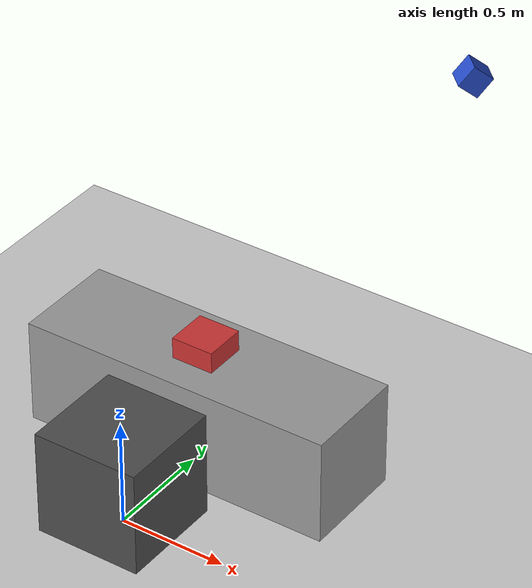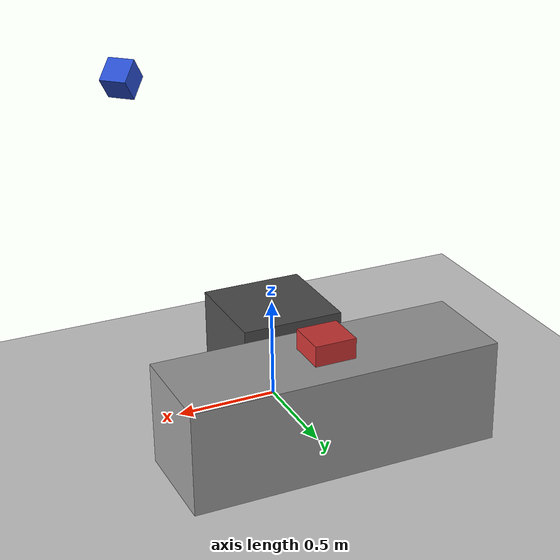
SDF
<?xml version="1.0" ?>
<sdf version="1.6">
  <world name="default">
    <!-- A global light source -->
    <include>
      <uri>model://sun</uri>
    </include>
    <!-- A ground plane -->
    <include>
      <uri>model://ground_plane</uri>
    </include>

    <!-- A simple model for the patient bed -->
    <model name="patient_bed">
      <static>true</static>
      <pose>0 0.6 0.25 0 -0 0</pose>
      <link name="link">
        <visual name="visual">
          <geometry>
            <box><size>1.5 0.5 0.5</size></box>
          </geometry>
          <material>
            <script><uri>file://media/materials/scripts/gazebo.material</uri><name>Gazebo/Grey</name></script>
          </material>
        </visual>
        <collision name="collision">
          <geometry><box><size>1.5 0.5 0.5</size></box></geometry>
        </collision>
      </link>
    </model>

    <!-- A table for the iiwa robot -->
    <model name="robot_table">
      <static>true</static>
      <pose>0 0 0.25 0 -0 0</pose>
      <link name="link">
        <visual name="visual">
          <geometry>
            <box><size>0.5 0.5 0.5</size></box>
          </geometry>
          <material>
            <script><uri>file://media/materials/scripts/gazebo.material</uri><name>Gazebo/DarkGrey</name></script>
          </material>
        </visual>
        <collision name="collision">
          <geometry><box><size>0.5 0.5 0.5</size></box></geometry>
        </collision>
      </link>
    </model>

    <!-- A simple model for the liver phantom -->
    <!-- Deformable by reducing contact stiffness -->
    <model name="liver_phantom">
      <static>false</static>
      <pose>0 0.6 0.55 0 -0 0</pose>
      <link name="link">
        <inertial>
          <mass>2.0</mass>
          <inertia>
            <ixx>0.0067</ixx>
            <ixy>0</ixy>
            <ixz>0</ixz>
            <iyy>0.0067</iyy>
            <iyz>0</iyz>
            <izz>0.0067</izz>
          </inertia>
        </inertial>
        <visual name="visual">
          <geometry>
            <box><size>0.2 0.2 0.1</size></box>
          </geometry>
          <material>
            <ambient>0.8 0.2 0.2 1</ambient>
            <diffuse>0.8 0.2 0.2 1</diffuse>
            <specular>0.1 0.1 0.1 1</specular>
          </material>
        </visual>
        <collision name="collision">
          <geometry><box><size>0.2 0.2 0.1</size></box></geometry>
          <surface>
            <contact>
              <ode>
                <!-- Soft tissue properties for liver-like compliance -->
                <!-- Lower kp = softer, more deformable (was 1000000, now 50000) -->
                <kp>50000.0</kp>
                <!-- Higher kd = more damping, less bouncy (was 1.0, now 100.0) -->
                <kd>100.0</kd>
                <!-- Allow small penetration for compliance -->
                <max_vel>0.01</max_vel>
                <min_depth>0.002</min_depth>
              </ode>
            </contact>
            <!-- Surface friction properties -->
            <friction>
              <ode>
                <mu>0.8</mu>
                <mu2>0.8</mu2>
              </ode>
            </friction>
            <!-- Soft body approximation using compliance -->
            <bounce>
              <restitution_coefficient>0.1</restitution_coefficient>
              <threshold>0.01</threshold>
            </bounce>
          </surface>
        </collision>
      </link>
      <joint name="world_fixed_joint" type="fixed">
        <parent>world</parent>
        <child>link</child>
      </joint>
    </model>

    <!-- Static World Camera -->
    <!-- IMPORTANT: Camera pose must match config/camera_config.yaml -->
    <!-- Position: x=0.6, y=0.6, z=1.5 | Orientation (radians): roll, pitch, yaw= -->
    <model name="world_camera">
      <static>true</static>
      <!-- Gazebo SDF uses radians for roll, pitch, yaw -->
      <pose>1 1 2 0 0.9 -2.35619449</pose>
      <link name="link">
        <visual name="visual">
          <geometry>
            <box>
              <size>0.1 0.1 0.1</size>
            </box>
          </geometry>
          <material>
            <script>
              <uri>file://media/materials/scripts/gazebo.material</uri>
              <name>Gazebo/Blue</name>
            </script>
          </material>
        </visual>
        <sensor name="camera" type="depth">
          <always_on>1</always_on>
          <update_rate>30</update_rate>
          <camera>
            <horizontal_fov>1.047</horizontal_fov>  <!-- 60 degrees -->
            <image>
              <width>640</width>
              <height>480</height>
              <format>R8G8B8</format>
            </image>
            <clip>
              <near>0.1</near>
              <far>10</far>
            </clip>
          </camera>
          <plugin name="camera_controller" filename="libgazebo_ros_openni_kinect.so">
            <baseline>0.1</baseline>
            <alwaysOn>true</alwaysOn>
            <updateRate>30.0</updateRate>
            <cameraName>world_camera</cameraName>
            <imageTopicName>rgb/image_raw</imageTopicName>
            <cameraInfoTopicName>rgb/camera_info</cameraInfoTopicName>
            <depthImageTopicName>depth/image_raw</depthImageTopicName>
            <depthImageCameraInfoTopicName>depth/camera_info</depthImageCameraInfoTopicName>
            <pointCloudTopicName>depth/points</pointCloudTopicName>
            <frameName>world_camera_optical_frame</frameName>
            <pointCloudCutoff>0.4</pointCloudCutoff>
            <pointCloudCutoffMax>10.0</pointCloudCutoffMax>
            <distortionK1>0.0</distortionK1>
            <distortionK2>0.0</distortionK2>
            <distortionK3>0.0</distortionK3>
            <distortionT1>0.0</distortionT1>
            <distortionT2>0.0</distortionT2>
          </plugin>
        </sensor>
      </link>
    </model>

  </world>
</sdf>
